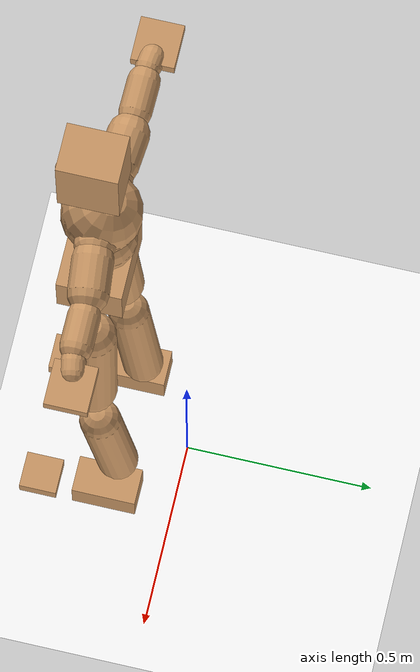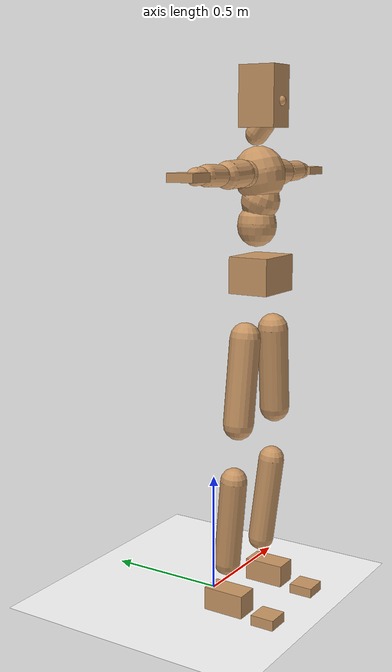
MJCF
<mujoco model="humanoid">
  <option integrator="implicitfast" />

  <visual>
    <global offwidth="1280" offheight="960" />
    <headlight active="1" ambient="0.34 0.34 0.34" diffuse="0.5 0.5 0.5" />
  </visual>

  <default>
    <joint damping="2" stiffness="2" armature="0.01" limited="true" solimplimit="0 .99 .01" />
    <geom condim="1" friction="0.7 0.005 0.0001" solimp=".99 .99 .003" solref="0.015 1" margin="0.001" rgba="0.8 0.6 .4 1" />
    <default class="smplcontact">
      <geom condim="3" friction="1. 0.005 0.0001" solref="0.015 1" solimp="0.98 0.98 0.001" priority="1" />
    </default>
    <default class="stiff_medium">
      <joint stiffness="10" />
    </default>
    <default class="stiff_medium_higher">
      <joint stiffness="50" />
    </default>
    <default class="stiff_high">
      <joint stiffness="100" />
    </default>
  </default>

  <asset>
    <texture type="skybox" builtin="gradient" rgb1="0.99 0.99 0.99" rgb2="0.608 0.828 0.892" width="100" />
    <texture builtin="flat" height="1278" mark="cross" markrgb="1 1 1" name="texgeom" random="0.01" rgb1="0.8 0.6 0.4" rgb2="0.8 0.6 0.4" type="cube" width="127" />
    <texture name="texplane" type="2d" builtin="checker" markrgb="1 1 1" rgb1="0.756 0.772 0.76" rgb2="0.6 0.6 0.6" width="100" height="100" />
    <material name="MatPlane" reflectance="0.5" texture="texplane" texrepeat="1 1" texuniform="true" />
    <material name="geom" texture="texgeom" texuniform="true" />
  </asset>

  <worldbody>
    <light name="tracking_light" pos="0 0 7" dir="0 0 -1" directional="true" cutoff="100" exponent="1" diffuse="1 1 1" specular="0.1 0.1 0.1" mode="trackcom" />
    <camera name="back" pos="0 3 2.4" xyaxes="-1 0 0 0 -1 2" mode="trackcom" />
    <camera name="side" pos="-3 0 2.4" xyaxes="0 -1 0 1 0 2" mode="trackcom" />
    <camera name="front_side" pos="-2.8 -2.8 0.8" xyaxes="0.5 -0.5 0 0.1 0.1 1" mode="trackcom" />
    <geom condim="3" name="floor" pos="0 0 0" rgba="1 1 1 1" size="100 100 .2" type="plane" material="MatPlane" />
    <body name="Pelvis" pos="-0.0018 -0.2233 1.39425" euler="90 0 0">
      <site name="Pelvis" size="0.01" />
      <freejoint name="Pelvis" />
      <geom type="box" pos="-0.0000 -0.0121 -0.0055" size="0.1069 0.0722 0.083" quat="1.0000 0.0000 0.0000 0.0000" density="3165.830099" name="Pelvis" />
      <body name="L_Hip" pos="0.10425 -0.1371 -0.0102">
        <joint name="L_Hip_x" type="hinge" pos="0 0 0" axis="1 0 0" stiffness="20.015620714285713" range="-160.0 22.92" class="stiff_medium" damping="35.83287359117287" armature="0.02851095036953482"/>
        <joint name="L_Hip_y" type="hinge" pos="0 0 0" axis="0 1 0" stiffness="19.866269693877552" range="-70.0 70.0" class="stiff_medium" damping="19.516878138369268" armature="0.019173631393182275"/>
        <joint name="L_Hip_z" type="hinge" pos="0 0 0" axis="0 0 1" stiffness="19.87905693877551" range="-28.65 90.0" class="stiff_medium" damping="23.812563344986486" armature="0.028524400066129187"/>
        <geom type="capsule" density="2040.816327" fromto="0.01035 -0.1125 -0.00135 0.0411 -0.4503 -0.0054" size="0.0615" name="L_Hip" />
        <body name="L_Knee" pos="0.05145 -0.5628 -0.00675">
          <joint name="L_Knee_x" type="hinge" pos="0 0 0" axis="1 0 0" range="-5.16 171.89" damping="17.99088108060037" armature="0.026396428561925714" stiffness="3.8318607346938776"/>
          <joint name="L_Knee_y" type="hinge" pos="0 0 0" axis="0 1 0" range="-4.58 6.88" damping="14.933138115539816" armature="0.017722990590982576" stiffness="3.932015113945578"/>
          <joint name="L_Knee_z" type="hinge" pos="0 0 0" axis="0 0 1" range="-6.88 4.58" damping="17.90521996986916" armature="0.026455159530536437" stiffness="3.7870318571428574"/>
          <geom type="capsule" density="1234.567901" fromto="-0.00405 -0.1194 -0.01305 -0.01635 -0.4776 -0.0525" size="0.0541" name="L_Knee" />
          <body name="L_Ankle" pos="-0.0204 -0.597 -0.06555">
            <joint name="L_Ankle_x" type="hinge" pos="0 0 0" axis="1 0 0" range="-45.84 45.84" class="stiff_medium" damping="9.919510798854684" armature="0.018221610090480504" stiffness="15.0"/>
            <joint name="L_Ankle_y" type="hinge" pos="0 0 0" axis="0 1 0" range="-74.48 22.92" class="stiff_medium" damping="4.917952818000754" armature="0.017915748088949298" stiffness="15.0"/>
            <joint name="L_Ankle_z" type="hinge" pos="0 0 0" axis="0 0 1" range="-4.58 4.58" class="stiff_medium" damping="9.269968981324833" armature="0.015913393502726768" stiffness="15.0"/>
            <geom type="box" pos="0.03495 -0.03585 0.0363" size="0.0483 0.0464 0.085" quat="1.0000 0.0000 0.0000 0.0000" density="449.071558" name="L_Ankle" class="smplcontact" />
            <body name="L_Toe" pos="0.0396 -0.0837 0.17895">
              <joint name="L_Toe_x" type="hinge" pos="0 0 0" axis="1 0 0" range="-91.67 22.92" armature="0.014752348892847818" damping="2.9751318182071684" stiffness="3.0"/>
              <joint name="L_Toe_y" type="hinge" pos="0 0 0" axis="0 1 0" range="-4.58 4.58" armature="0.01334841345486218" damping="2.8300261611718907" stiffness="3.0"/>
              <joint name="L_Toe_z" type="hinge" pos="0 0 0" axis="0 0 1" range="-4.58 4.58" armature="0.010509731565733258" damping="2.5111429547996575" stiffness="3.0"/>
              <geom type="box" pos="-0.0045 0.00825 0.0372" size="0.0478 0.02 0.0496" quat="1.0000 0.0000 0.0000 0.0000" density="423.206892" name="L_Toe" class="smplcontact" />
            </body>
          </body>
        </body>
      </body>
      <body name="R_Hip" pos="-0.10155 -0.13575 -0.00645">
        <joint name="R_Hip_x" type="hinge" pos="0 0 0" axis="1 0 0" stiffness="20.015620714285713" range="-160.0 22.92" class="stiff_medium" damping="35.83287359117287" armature="0.02851095036953482"/>
        <joint name="R_Hip_y" type="hinge" pos="0 0 0" axis="0 1 0" stiffness="19.866269693877552" range="-70.0 70.0" class="stiff_medium" damping="19.516878138369268" armature="0.019173631393182275"/>
        <joint name="R_Hip_z" type="hinge" pos="0 0 0" axis="0 0 1" stiffness="19.87905693877551" range="-90.0 28.65" class="stiff_medium" damping="23.812563344986486" armature="0.028524400066129187"/>
        <geom type="capsule" density="2040.816327" fromto="-0.01155 -0.11475 -0.0027 -0.0459 -0.45915 -0.01065" size="0.0606" name="R_Hip" />
        <body name="R_Knee" pos="-0.05745 -0.5739 -0.01335">
          <joint name="R_Knee_x" type="hinge" pos="0 0 0" axis="1 0 0" range="-5.16 171.89" damping="17.99088108060037" armature="0.026396428561925714" stiffness="3.8318607346938776"/>
          <joint name="R_Knee_y" type="hinge" pos="0 0 0" axis="0 1 0" range="-6.88 4.58" damping="14.933138115539816" armature="0.017722990590982576" stiffness="3.932015113945578"/>
          <joint name="R_Knee_z" type="hinge" pos="0 0 0" axis="0 0 1" range="-4.58 6.88" damping="17.90521996986916" armature="0.026455159530536437" stiffness="3.7870318571428574"/>
          <geom type="capsule" density="1234.567901" fromto="0.0048 -0.11955 -0.01275 0.0189 -0.47805 -0.0507" size="0.0541" name="R_Knee" />
          <body name="R_Ankle" pos="0.0237 -0.5976 -0.06345">
            <joint name="R_Ankle_x" type="hinge" pos="0 0 0" axis="1 0 0" range="-45.84 45.84" class="stiff_medium" damping="9.919510798854684" armature="0.018221610090480504" stiffness="15.0"/>
            <joint name="R_Ankle_y" type="hinge" pos="0 0 0" axis="0 1 0" range="-22.92 74.48" class="stiff_medium" damping="4.917952818000754" armature="0.017915748088949298" stiffness="15.0"/>
            <joint name="R_Ankle_z" type="hinge" pos="0 0 0" axis="0 0 1" range="-4.58 4.58" class="stiff_medium" damping="9.269968981324833" armature="0.015913393502726768" stiffness="15.0"/>
            <geom type="box" pos="-0.0318 -0.0261 0.0384" size="0.0483 0.0478 0.0865" quat="1.0000 0.0000 0.0000 0.0000" density="434.700981" name="R_Ankle" class="smplcontact" />
            <body name="R_Toe" pos="-0.0381 -0.07215 0.18495">
              <joint name="R_Toe_x" type="hinge" pos="0 0 0" axis="1 0 0" range="-91.67 22.92" armature="0.014752348892847818" damping="2.9751318182071684" stiffness="3.0"/>
              <joint name="R_Toe_y" type="hinge" pos="0 0 0" axis="0 1 0" range="-4.58 4.58" armature="0.01334841345486218" damping="2.8300261611718907" stiffness="3.0"/>
              <joint name="R_Toe_z" type="hinge" pos="0 0 0" axis="0 0 1" range="-4.58 4.58" armature="0.010509731565733258" damping="2.5111429547996575" stiffness="3.0"/>
              <geom type="box" pos="0.0063 0.00675 0.03405" size="0.0479 0.0216 0.0493" quat="1.0000 0.0000 0.0000 0.0000" density="407.384095" name="R_Toe" class="smplcontact" />
            </body>
          </body>
        </body>
      </body>
      <body name="Torso" pos="-0.0025 0.109 -0.0267">
        <joint name="Torso_x" type="hinge" pos="0 0 0" axis="1 0 0" range="-25.78 57.3" class="stiff_medium" damping="12.83312864312064" armature="0.008389867755726702" stiffness="8.724237142857143"/>
        <joint name="Torso_y" type="hinge" pos="0 0 0" axis="0 1 0" range="-57.3 57.3" class="stiff_high" damping="9.641007877053582" armature="0.0026152511802961754" stiffness="88.85287346938776"/>
        <joint name="Torso_z" type="hinge" pos="0 0 0" axis="0 0 1" range="-34.38 34.38" class="stiff_high" damping="15.25662184807281" armature="0.006404603814601959" stiffness="90.85827826086955"/>
        <geom type="capsule" density="2040.816327" fromto="0.0025 0.0608 0.0005 0.003 0.0743 0.0006" size="0.0769" name="Torso" />
        <body name="Spine" pos="0.0055 0.1352 0.0011">
          <joint name="Spine_x" type="hinge" pos="0 0 0" axis="1 0 0" stiffness="8.524132708333333" range="-25.78 57.3" class="stiff_medium" damping="12.593328186154565" armature="0.008268911088118508"/>
          <joint name="Spine_y" type="hinge" pos="0 0 0" axis="0 1 0" stiffness="8.372724772727274" range="-57.3 57.3" class="stiff_high" damping="3.7058359647278705" armature="0.002562864197858745"/>
          <joint name="Spine_z" type="hinge" pos="0 0 0" axis="0 0 1" stiffness="17.091765581395343" range="-34.38 34.38" class="stiff_high" damping="7.9123307827240765" armature="0.0050873245655035"/>
          <geom type="capsule" density="2040.816327" fromto="0.0007 0.0238 0.0114 0.0008 0.0291 0.014" size="0.0755" name="Spine" />
          <body name="Chest" pos="0.0015 0.0529 0.0254">
            <joint name="Chest_x" type="hinge" pos="0 0 0" axis="1 0 0" stiffness="8.200278372093024" range="-25.78 57.3" class="stiff_medium" damping="12.319816615498851" armature="0.008226164178146719"/>
            <joint name="Chest_y" type="hinge" pos="0 0 0" axis="0 1 0" stiffness="6.66116392857143" range="-57.3 57.3" class="stiff_high" damping="3.2862373670032503" armature="0.0025331899922285133"/>
            <joint name="Chest_z" type="hinge" pos="0 0 0" axis="0 0 1" stiffness="16.64932651162791" range="-34.38 34.38" class="stiff_high" damping="7.360514262532785" armature="0.004519466278837095"/>
            <geom type="capsule" density="2040.816327" fromto="-0.0009 0.0682 -0.0173 -0.001 0.0833 -0.0212" size="0.1002" name="Chest" />
            <body name="Neck" pos="-0.0028 0.2139 -0.0429">
              <joint name="Neck_x" type="hinge" pos="0 0 0" axis="1 0 0" range="-28.65 57.3" class="stiff_medium_higher" damping="10.000000000000004" armature="0.010000000000000009" stiffness="50.0"/>
              <joint name="Neck_y" type="hinge" pos="0 0 0" axis="0 1 0" range="-40.11 40.11" class="stiff_medium_higher" damping="10.0" armature="0.01" stiffness="50.0"/>
              <joint name="Neck_z" type="hinge" pos="0 0 0" axis="0 0 1" range="-40.11 40.11" class="stiff_medium_higher" damping="9.999999999999979" armature="0.009999999999999959" stiffness="50.0"/>
              <geom type="capsule" density="1000" fromto="0.001 0.013 0.0103 0.0041 0.052 0.0411" size="0.0436" name="Neck" />
              <body name="Head" pos="0.0052 0.065 0.0513">
                <joint name="Head_x" type="hinge" pos="0 0 0" axis="1 0 0" range="-28.65 57.3" class="stiff_medium_higher" damping="1.9999999999999982" armature="0.009999999999999983" stiffness="50.0"/>
                <joint name="Head_y" type="hinge" pos="0 0 0" axis="0 1 0" range="-40.11 40.11" class="stiff_medium_higher" damping="2.0" armature="0.01" stiffness="50.0"/>
                <joint name="Head_z" type="hinge" pos="0 0 0" axis="0 0 1" range="-40.11 40.11" class="stiff_medium_higher" damping="1.999999999999996" armature="0.009999999999999962" stiffness="50.0"/>
                <geom type="box" pos="-0.0042 0.0876 -0.0116" size="0.0606 0.1154 0.076" quat="1.0000 0.0000 0.0000 0.0000" density="1018.069894" name="Head" />
                <geom type="capsule" name="nose" size="0.02 0.01" pos="0 0.07 0.05" quat="1 0 0 0" mass="0" contype="0" conaffinity="0" />
              </body>
            </body>
            <body name="L_Thorax" pos="0.04334 0.066935 -0.018755">
              <joint name="L_Thorax_x" type="hinge" pos="0 0 0" axis="1 0 0" range="-10.89 4.58" class="stiff_medium_higher" damping="8.434703621562758" armature="0.004456108006307089" stiffness="19.956940306122444"/>
              <joint name="L_Thorax_y" type="hinge" pos="0 0 0" axis="0 1 0" range="-28.65 17.19" class="stiff_medium_higher" damping="6.022763730189365" armature="0.002308462047497596" stiffness="19.641693367346935"/>
              <joint name="L_Thorax_z" type="hinge" pos="0 0 0" axis="0 0 1" range="-31.51 40.11" class="stiff_medium_higher" damping="6.020659652326863" armature="0.0023064402545495072" stiffness="19.64517755102041"/>
              <geom type="capsule" density="1000" fromto="0.01001 0.003355 -0.00099 0.04004 0.01342 -0.003905" size="0.0521" name="L_Thorax" />
              <body name="L_Shoulder" pos="0.05005 0.016775 -0.004895">
                <joint name="L_Shoulder_x" type="hinge" pos="0 0 0" axis="1 0 0" range="-97.4 97.4" class="stiff_medium" damping="2.750732619270307" armature="0.005207580254125437" stiffness="4.036066215805471"/>
                <joint name="L_Shoulder_y" type="hinge" pos="0 0 0" axis="0 1 0" range="-108.86 80.21" class="stiff_medium" damping="1.8298767221096353" armature="0.0023536822566645405" stiffness="3.9517852040816326"/>
                <joint name="L_Shoulder_z" type="hinge" pos="0 0 0" axis="0 0 1" range="-97.4 85.94" class="stiff_medium" damping="1.8299095357342448" armature="0.002350748922258386" stiffness="3.9568582653061224"/>
                <geom type="capsule" density="1000" fromto="0.028545 -0.00143 -0.003025 0.114235 -0.00561 -0.0121" size="0.0517" name="L_Shoulder" />
                <body name="L_Elbow" pos="0.14278 -0.00704 -0.015125">
                  <joint name="L_Elbow_x" type="hinge" pos="0 0 0" axis="1 0 0" range="-17.19 4.58" damping="2.6383809861160996" armature="0.0066028902176262895" stiffness="0.8433948163265306"/>
                  <joint name="L_Elbow_y" type="hinge" pos="0 0 0" axis="0 1 0" range="-180.0 17.19" damping="1.649331180076203" armature="0.0025828362461048165" stiffness="0.842575551020408"/>
                  <joint name="L_Elbow_z" type="hinge" pos="0 0 0" axis="0 0 1" range="-100.84 4.58" damping="1.6457692537144069" armature="0.0025674453810836995" stiffness="0.8439693265306122"/>
                  <geom type="capsule" density="1000" fromto="0.02739 0.00099 -0.00011 0.10967 0.00396 -0.000495" size="0.0405" name="L_Elbow" />
                  <body name="L_Wrist" pos="0.13706 0.00495 -0.00066">
                    <joint name="L_Wrist_x" type="hinge" pos="0 0 0" axis="1 0 0" range="-180.0 22.92" armature="0.007461834395238961" damping="1.2279494204587553" stiffness="1.0103814285714288"/>
                    <joint name="L_Wrist_y" type="hinge" pos="0 0 0" axis="0 1 0" range="-17.19 17.19" armature="0.003664915616612755" damping="0.8549575346764109" stiffness="0.9972294897959184"/>
                    <joint name="L_Wrist_z" type="hinge" pos="0 0 0" axis="0 0 1" range="-22.92 22.92" armature="0.003441422269276133" damping="0.8306797080467407" stiffness="1.002534306122449"/>
                    <geom type="capsule" density="1000" fromto="0.00924 -0.00088 -0.00165 0.03696 -0.003575 -0.0066" size="0.0318" name="L_Wrist" class="smplcontact" />
                    <body name="L_Hand" pos="0.0462 -0.00451 -0.008195">
                      <joint name="L_Hand_x" type="hinge" pos="0 0 0" axis="1 0 0" range="-17.19 17.19" armature="0.009696126030368629" damping="1.4605299472044722" stiffness="1.0999999999999999"/>
                      <joint name="L_Hand_y" type="hinge" pos="0 0 0" axis="0 1 0" range="-51.57 51.57" armature="0.006325063576496692" damping="1.1796245109479846" stiffness="1.0999999999999999"/>
                      <joint name="L_Hand_z" type="hinge" pos="0 0 0" axis="0 0 1" range="-91.67 91.67" armature="0.0054264608203164364" damping="1.0926213344382472" stiffness="1.0999999999999999"/>
                      <geom type="box" pos="0.027115 0.00055 -0.00319" size="0.0585 0.0158 0.0538" quat="1.0000 0.0000 0.0000 0.0000" density="400.552564" name="L_Hand" class="smplcontact" />
                    </body>
                  </body>
                </body>
              </body>
            </body>
            <body name="R_Thorax" pos="-0.04499 0.06534 -0.02123">
              <joint name="R_Thorax_x" type="hinge" pos="0 0 0" axis="1 0 0" range="-10.89 4.58" class="stiff_medium_higher" damping="8.434703621562758" armature="0.004456108006307089" stiffness="19.956940306122444"/>
              <joint name="R_Thorax_y" type="hinge" pos="0 0 0" axis="0 1 0" range="-17.19 28.65" class="stiff_medium_higher" damping="6.022763730189365" armature="0.002308462047497596" stiffness="19.641693367346935"/>
              <joint name="R_Thorax_z" type="hinge" pos="0 0 0" axis="0 0 1" range="-40.11 31.51" class="stiff_medium_higher" damping="6.020659652326863" armature="0.0023064402545495072" stiffness="19.64517755102041"/>
              <geom type="capsule" density="1000" fromto="-0.01056 0.003575 -0.00099 -0.04224 0.0143 -0.004015" size="0.0511" name="R_Thorax" />
              <body name="R_Shoulder" pos="-0.0528 0.01793 -0.005005">
                <joint name="R_Shoulder_x" type="hinge" pos="0 0 0" axis="1 0 0" range="-97.4 97.4" class="stiff_medium" damping="2.750732619270307" armature="0.005207580254125437" stiffness="4.036066215805471"/>
                <joint name="R_Shoulder_y" type="hinge" pos="0 0 0" axis="0 1 0" range="-80.21 108.86" class="stiff_medium" damping="1.8298767221096353" armature="0.0023536822566645405" stiffness="3.9517852040816326"/>
                <joint name="R_Shoulder_z" type="hinge" pos="0 0 0" axis="0 0 1" range="-85.94 97.4" class="stiff_medium" damping="1.8299095357342448" armature="0.002350748922258386" stiffness="3.9568582653061224"/>
                <geom type="capsule" density="1000" fromto="-0.027885 -0.001485 -0.002365 -0.11165 -0.005885 -0.009405" size="0.0531" name="R_Shoulder" />
                <body name="R_Elbow" pos="-0.139535 -0.007315 -0.01177">
                  <joint name="R_Elbow_x" type="hinge" pos="0 0 0" axis="1 0 0" range="-17.19 4.58" damping="2.6383809861160996" armature="0.0066028902176262895" stiffness="0.8433948163265306"/>
                  <joint name="R_Elbow_y" type="hinge" pos="0 0 0" axis="0 1 0" range="-17.19 180.0" damping="1.649331180076203" armature="0.0025828362461048165" stiffness="0.842575551020408"/>
                  <joint name="R_Elbow_z" type="hinge" pos="0 0 0" axis="0 0 1" range="-4.58 100.84" damping="1.6457692537144069" armature="0.0025674453810836995" stiffness="0.8439693265306122"/>
                  <geom type="capsule" density="1000" fromto="-0.028105 0.00088 -0.000605 -0.11231 0.00341 -0.00242" size="0.0408" name="R_Elbow" />
                  <body name="R_Wrist" pos="-0.140415 0.00429 -0.00308">
                    <joint name="R_Wrist_x" type="hinge" pos="0 0 0" axis="1 0 0" range="-180.0 22.92" armature="0.007461834395238961" damping="1.2279494204587553" stiffness="1.0103814285714288"/>
                    <joint name="R_Wrist_y" type="hinge" pos="0 0 0" axis="0 1 0" range="-17.19 17.19" armature="0.003664915616612755" damping="0.8549575346764109" stiffness="0.9972294897959184"/>
                    <joint name="R_Wrist_z" type="hinge" pos="0 0 0" axis="0 0 1" range="-22.92 22.92" armature="0.003441422269276133" damping="0.8306797080467407" stiffness="1.002534306122449"/>
                    <geom type="capsule" density="1000" fromto="-0.009295 -0.00066 -0.001155 -0.037235 -0.002695 -0.004565" size="0.0326" name="R_Wrist" class="smplcontact" />
                    <body name="R_Hand" pos="-0.04653 -0.003355 -0.005665">
                      <joint name="R_Hand_x" type="hinge" pos="0 0 0" axis="1 0 0" range="-17.19 17.19" armature="0.009696126030368629" damping="1.4605299472044722" stiffness="1.0999999999999999"/>
                      <joint name="R_Hand_y" type="hinge" pos="0 0 0" axis="0 1 0" range="-51.57 51.57" armature="0.006325063576496692" damping="1.1796245109479846" stiffness="1.0999999999999999"/>
                      <joint name="R_Hand_z" type="hinge" pos="0 0 0" axis="0 0 1" range="-91.67 91.67" armature="0.0054264608203164364" damping="1.0926213344382472" stiffness="1.0999999999999999"/>
                      <geom type="box" pos="-0.02541 -0.000495 -0.004345" size="0.0569 0.0164 0.0546" quat="1.0000 0.0000 0.0000 0.0000" density="403.679611" name="R_Hand" class="smplcontact" />
                    </body>
                  </body>
                </body>
              </body>
            </body>
          </body>
        </body>
      </body>
    </body>
  </worldbody>
  <actuator>
    <general name="L_Hip_x" joint="L_Hip_x" biastype="affine" gainprm="575.1089582783409" biasprm="-430.985873610294 -360.28117285714285 -4.7777164788230495" ctrllimited="true" ctrlrange="-1 1" forcerange="-720.5623457142857 720.5623457142857" />
    <general name="L_Hip_y" joint="L_Hip_y" biastype="affine" gainprm="436.88208847163486" biasprm="0.0 -357.5928544897959 -3.903375627673854" ctrllimited="true" ctrlrange="-1 1" forcerange="-715.1857089795918 715.1857089795918" />
    <general name="L_Hip_z" joint="L_Hip_z" biastype="affine" gainprm="370.49589223625946" biasprm="191.57120091609366 -357.82302489795916 -4.762512668997298" ctrllimited="true" ctrlrange="-1 1" forcerange="-715.6460497959183 715.6460497959183" />
    <general name="L_Knee_x" joint="L_Knee_x" biastype="affine" gainprm="532.8384166851074" biasprm="501.7800012081782 -344.867466122449 -4.497720270150093" ctrllimited="true" ctrlrange="-1 1" forcerange="-689.734932244898 689.734932244898" />
    <general name="L_Knee_y" joint="L_Knee_y" biastype="affine" gainprm="35.39074276489669" biasprm="7.10285413257089 -353.88136025510204 -3.733284528884954" ctrllimited="true" ctrlrange="-1 1" forcerange="-707.7627205102041 707.7627205102041" />
    <general name="L_Knee_z" joint="L_Knee_z" biastype="affine" gainprm="34.085797336654615" biasprm="-6.840954090253544 -340.83286714285714 -4.47630499246729" ctrllimited="true" ctrlrange="-1 1" forcerange="-681.6657342857143 681.6657342857143" />
    <general name="L_Ankle_x" joint="L_Ankle_x" biastype="affine" gainprm="108.0079554304171" biasprm="0.0 -135.0 -3.306503599618228" ctrllimited="true" ctrlrange="-1 1" forcerange="-270.0 270.0" />
    <general name="L_Ankle_y" joint="L_Ankle_y" biastype="affine" gainprm="114.74667167236721" biasprm="-60.742693957158664 -135.0 -3.2786352120005025" ctrllimited="true" ctrlrange="-1 1" forcerange="-270.0 270.0" />
    <general name="L_Ankle_z" joint="L_Ankle_z" biastype="affine" gainprm="10.791370765080938" biasprm="0.0 -135.0 -3.089989660441611" ctrllimited="true" ctrlrange="-1 1" forcerange="-270.0 270.0" />
    <general name="L_Toe_x" joint="L_Toe_x" biastype="affine" gainprm="107.99853065245631" biasprm="-64.79534848028948 -108.0 -1.1900527272828674" ctrllimited="true" ctrlrange="-1 1" forcerange="-216.0 216.0" />
    <general name="L_Toe_y" joint="L_Toe_y" biastype="affine" gainprm="8.633096612064751" biasprm="0.0 -108.0 -1.1320104644687563" ctrllimited="true" ctrlrange="-1 1" forcerange="-216.0 216.0" />
    <general name="L_Toe_z" joint="L_Toe_z" biastype="affine" gainprm="8.633096612064751" biasprm="0.0 -108.0 -1.004457181919863" ctrllimited="true" ctrlrange="-1 1" forcerange="-216.0 216.0" />
    <general name="R_Hip_x" joint="R_Hip_x" biastype="affine" gainprm="575.1089582783409" biasprm="-430.985873610294 -360.28117285714285 -4.7777164788230495" ctrllimited="true" ctrlrange="-1 1" forcerange="-720.5623457142857 720.5623457142857" />
    <general name="R_Hip_y" joint="R_Hip_y" biastype="affine" gainprm="436.88208847163486" biasprm="0.0 -357.5928544897959 -3.903375627673854" ctrllimited="true" ctrlrange="-1 1" forcerange="-715.1857089795918 715.1857089795918" />
    <general name="R_Hip_z" joint="R_Hip_z" biastype="affine" gainprm="370.49589223625946" biasprm="-191.57120091609366 -357.82302489795916 -4.762512668997298" ctrllimited="true" ctrlrange="-1 1" forcerange="-715.6460497959183 715.6460497959183" />
    <general name="R_Knee_x" joint="R_Knee_x" biastype="affine" gainprm="532.8384166851074" biasprm="501.7800012081782 -344.867466122449 -4.497720270150093" ctrllimited="true" ctrlrange="-1 1" forcerange="-689.734932244898 689.734932244898" />
    <general name="R_Knee_y" joint="R_Knee_y" biastype="affine" gainprm="35.39074276489669" biasprm="-7.10285413257089 -353.88136025510204 -3.733284528884954" ctrllimited="true" ctrlrange="-1 1" forcerange="-707.7627205102041 707.7627205102041" />
    <general name="R_Knee_z" joint="R_Knee_z" biastype="affine" gainprm="34.085797336654615" biasprm="6.840954090253544 -340.83286714285714 -4.47630499246729" ctrllimited="true" ctrlrange="-1 1" forcerange="-681.6657342857143 681.6657342857143" />
    <general name="R_Ankle_x" joint="R_Ankle_x" biastype="affine" gainprm="108.0079554304171" biasprm="0.0 -135.0 -3.306503599618228" ctrllimited="true" ctrlrange="-1 1" forcerange="-270.0 270.0" />
    <general name="R_Ankle_y" joint="R_Ankle_y" biastype="affine" gainprm="114.74667167236721" biasprm="60.742693957158664 -135.0 -3.2786352120005025" ctrllimited="true" ctrlrange="-1 1" forcerange="-270.0 270.0" />
    <general name="R_Ankle_z" joint="R_Ankle_z" biastype="affine" gainprm="10.791370765080938" biasprm="0.0 -135.0 -3.089989660441611" ctrllimited="true" ctrlrange="-1 1" forcerange="-270.0 270.0" />
    <general name="R_Toe_x" joint="R_Toe_x" biastype="affine" gainprm="107.99853065245631" biasprm="-64.79534848028948 -108.0 -1.1900527272828674" ctrllimited="true" ctrlrange="-1 1" forcerange="-216.0 216.0" />
    <general name="R_Toe_y" joint="R_Toe_y" biastype="affine" gainprm="8.633096612064751" biasprm="0.0 -108.0 -1.1320104644687563" ctrllimited="true" ctrlrange="-1 1" forcerange="-216.0 216.0" />
    <general name="R_Toe_z" joint="R_Toe_z" biastype="affine" gainprm="8.633096612064751" biasprm="0.0 -108.0 -1.004457181919863" ctrllimited="true" ctrlrange="-1 1" forcerange="-216.0 216.0" />
    <general name="Torso_x" joint="Torso_x" biastype="affine" gainprm="151.80377221252243" biasprm="57.593342563056154 -209.38169142857143 -3.422167638165504" ctrllimited="true" ctrlrange="-1 1" forcerange="-314.07253714285713 314.07253714285713" />
    <general name="Torso_y" joint="Torso_y" biastype="affine" gainprm="213.26260438991383" biasprm="0.0 -213.24689632653062 -1.9282015754107165" ctrllimited="true" ctrlrange="-1 1" forcerange="-319.8703444897959 319.8703444897959" />
    <general name="Torso_z" joint="Torso_z" biastype="affine" gainprm="130.84555825179245" biasprm="0.0 -218.05986782608693 -3.0513243696145618" ctrllimited="true" ctrlrange="-1 1" forcerange="-327.0898017391304 327.0898017391304" />
    <general name="Spine_x" joint="Spine_x" biastype="affine" gainprm="148.32190812518058" biasprm="56.272346462514335 -204.579185 -3.3582208496412176" ctrllimited="true" ctrlrange="-1 1" forcerange="-306.86877749999996 306.86877749999996" />
    <general name="Spine_y" joint="Spine_y" biastype="affine" gainprm="200.96019646308363" biasprm="0.0 -200.94539454545458 -1.8529179823639352" ctrllimited="true" ctrlrange="-1 1" forcerange="-301.41809181818184 301.41809181818184" />
    <general name="Spine_z" joint="Spine_z" biastype="affine" gainprm="123.06977700949903" biasprm="0.0 -205.10118697674412 -2.637443594241359" ctrllimited="true" ctrlrange="-1 1" forcerange="-307.6517804651162 307.6517804651162" />
    <general name="Chest_x" joint="Chest_x" biastype="affine" gainprm="142.68676672729774" biasprm="54.13441125715483 -196.80668093023257 -3.2852844307996936" ctrllimited="true" ctrlrange="-1 1" forcerange="-295.21002139534886 295.21002139534886" />
    <general name="Chest_y" joint="Chest_y" biastype="affine" gainprm="159.87971038041" biasprm="0.0 -159.8679342857143 -1.6431186835016252" ctrllimited="true" ctrlrange="-1 1" forcerange="-239.80190142857145 239.80190142857145" />
    <general name="Chest_z" joint="Chest_z" biastype="affine" gainprm="119.88398105429127" biasprm="0.0 -199.7919181395349 -2.453504754177595" ctrllimited="true" ctrlrange="-1 1" forcerange="-299.68787720930237 299.68787720930237" />
    <general name="Neck_x" joint="Neck_x" biastype="affine" gainprm="27.00198885760427" biasprm="9.000662952534757 -36.0 -0.8000000000000004" ctrllimited="true" ctrlrange="-1 1" forcerange="-72.0 72.0" />
    <general name="Neck_y" joint="Neck_y" biastype="affine" gainprm="25.20185626709732" biasprm="0.0 -36.0 -0.8" ctrllimited="true" ctrlrange="-1 1" forcerange="-72.0 72.0" />
    <general name="Neck_z" joint="Neck_z" biastype="affine" gainprm="25.20185626709732" biasprm="0.0 -36.0 -0.7999999999999984" ctrllimited="true" ctrlrange="-1 1" forcerange="-72.0 72.0" />
    <general name="Head_x" joint="Head_x" biastype="affine" gainprm="18.001325905069514" biasprm="6.000441968356505 -24.0 -0.7999999999999994" ctrllimited="true" ctrlrange="-1 1" forcerange="-48.0 48.0" />
    <general name="Head_y" joint="Head_y" biastype="affine" gainprm="16.801237511398213" biasprm="0.0 -24.0 -0.8" ctrllimited="true" ctrlrange="-1 1" forcerange="-48.0 48.0" />
    <general name="Head_z" joint="Head_z" biastype="affine" gainprm="16.801237511398213" biasprm="0.0 -24.0 -0.7999999999999985" ctrllimited="true" ctrlrange="-1 1" forcerange="-48.0 48.0" />
    <general name="L_Thorax_x" joint="L_Thorax_x" biastype="affine" gainprm="6.466106980153143" biasprm="-2.6374360080650514 -47.89665673469387 -0.6747762897250207" ctrllimited="true" ctrlrange="-1 1" forcerange="-95.79331346938774 95.79331346938774" />
    <general name="L_Thorax_y" joint="L_Thorax_y" biastype="affine" gainprm="18.857414593762904" biasprm="-4.714353648440726 -47.140064081632644 -0.48182109841514925" ctrllimited="true" ctrlrange="-1 1" forcerange="-94.28012816326529 94.28012816326529" />
    <general name="L_Thorax_z" joint="L_Thorax_z" biastype="affine" gainprm="29.46787972505706" biasprm="3.538449673771163 -47.14842612244898 -0.48165277218614905" ctrllimited="true" ctrlrange="-1 1" forcerange="-94.29685224489796 94.29685224489796" />
    <general name="L_Shoulder_x" joint="L_Shoulder_x" biastype="affine" gainprm="32.93334506047744" biasprm="0.0 -19.373117835866264 -0.733528698472082" ctrllimited="true" ctrlrange="-1 1" forcerange="-38.74623567173253 38.74623567173253" />
    <general name="L_Shoulder_y" joint="L_Shoulder_y" biastype="affine" gainprm="31.297133640991394" biasprm="-4.74249155770034 -18.968568979591836 -0.4879671258959028" ctrllimited="true" ctrlrange="-1 1" forcerange="-37.93713795918367 37.93713795918367" />
    <general name="L_Shoulder_z" joint="L_Shoulder_z" biastype="affine" gainprm="30.387595059587213" biasprm="-1.8994318718384982 -18.992919673469387 -0.48797587619579863" ctrllimited="true" ctrlrange="-1 1" forcerange="-37.985839346938775 37.985839346938775" />
    <general name="L_Elbow_x" joint="L_Elbow_x" biastype="affine" gainprm="5.768185641845626" biasprm="-3.3411493313584466 -30.3622133877551 -0.42214095777857596" ctrllimited="true" ctrlrange="-1 1" forcerange="-60.7244267755102 60.7244267755102" />
    <general name="L_Elbow_y" joint="L_Elbow_y" biastype="affine" gainprm="52.19676802931011" biasprm="-43.09628177317298 -30.33271983673469 -0.2638929888121925" ctrllimited="true" ctrlrange="-1 1" forcerange="-60.66543967346938 60.66543967346938" />
    <general name="L_Elbow_z" joint="L_Elbow_z" biastype="affine" gainprm="27.951141407994328" biasprm="-25.522451830141666 -30.382895755102037 -0.26332308059430515" ctrllimited="true" ctrlrange="-1 1" forcerange="-60.765791510204075 60.765791510204075" />
    <general name="L_Wrist_x" joint="L_Wrist_x" biastype="affine" gainprm="10.735167645580283" biasprm="-8.310073594361082 -6.062288571428573 -0.4911797681835022" ctrllimited="true" ctrlrange="-1 1" forcerange="-12.124577142857145 12.124577142857145" />
    <general name="L_Wrist_y" joint="L_Wrist_y" biastype="affine" gainprm="1.7951453047962525" biasprm="0.0 -5.9833769387755105 -0.3419830138705644" ctrllimited="true" ctrlrange="-1 1" forcerange="-11.966753877551021 11.966753877551021" />
    <general name="L_Wrist_z" joint="L_Wrist_z" biastype="affine" gainprm="2.4062595700697247" biasprm="0.0 -6.015205836734694 -0.33227188321869633" ctrllimited="true" ctrlrange="-1 1" forcerange="-12.030411673469388 12.030411673469388" />
    <general name="L_Hand_x" joint="L_Hand_x" biastype="affine" gainprm="1.9801458495576467" biasprm="0.0 -6.6 -0.5842119788817889" ctrllimited="true" ctrlrange="-1 1" forcerange="-13.2 13.2" />
    <general name="L_Hand_y" joint="L_Hand_y" biastype="affine" gainprm="5.940437548672939" biasprm="0.0 -6.6 -0.4718498043791939" ctrllimited="true" ctrlrange="-1 1" forcerange="-13.2 13.2" />
    <general name="L_Hand_z" joint="L_Hand_z" biastype="affine" gainprm="10.55962594700113" biasprm="0.0 -6.6 -0.4370485337752989" ctrllimited="true" ctrlrange="-1 1" forcerange="-13.2 13.2" />
    <general name="R_Thorax_x" joint="R_Thorax_x" biastype="affine" gainprm="6.466106980153143" biasprm="-2.6374360080650514 -47.89665673469387 -0.6747762897250207" ctrllimited="true" ctrlrange="-1 1" forcerange="-95.79331346938774 95.79331346938774" />
    <general name="R_Thorax_y" joint="R_Thorax_y" biastype="affine" gainprm="18.857414593762904" biasprm="4.714353648440723 -47.140064081632644 -0.48182109841514925" ctrllimited="true" ctrlrange="-1 1" forcerange="-94.28012816326529 94.28012816326529" />
    <general name="R_Thorax_z" joint="R_Thorax_z" biastype="affine" gainprm="29.46787972505706" biasprm="-3.538449673771163 -47.14842612244898 -0.48165277218614905" ctrllimited="true" ctrlrange="-1 1" forcerange="-94.29685224489796 94.29685224489796" />
    <general name="R_Shoulder_x" joint="R_Shoulder_x" biastype="affine" gainprm="32.93334506047744" biasprm="0.0 -19.373117835866264 -0.733528698472082" ctrllimited="true" ctrlrange="-1 1" forcerange="-38.74623567173253 38.74623567173253" />
    <general name="R_Shoulder_y" joint="R_Shoulder_y" biastype="affine" gainprm="31.297133640991394" biasprm="4.74249155770034 -18.968568979591836 -0.4879671258959028" ctrllimited="true" ctrlrange="-1 1" forcerange="-37.93713795918367 37.93713795918367" />
    <general name="R_Shoulder_z" joint="R_Shoulder_z" biastype="affine" gainprm="30.387595059587213" biasprm="1.899431871838494 -18.992919673469387 -0.48797587619579863" ctrllimited="true" ctrlrange="-1 1" forcerange="-37.985839346938775 37.985839346938775" />
    <general name="R_Elbow_x" joint="R_Elbow_x" biastype="affine" gainprm="5.768185641845626" biasprm="-3.3411493313584466 -30.3622133877551 -0.42214095777857596" ctrllimited="true" ctrlrange="-1 1" forcerange="-60.7244267755102 60.7244267755102" />
    <general name="R_Elbow_y" joint="R_Elbow_y" biastype="affine" gainprm="52.19676802931011" biasprm="43.09628177317298 -30.33271983673469 -0.2638929888121925" ctrllimited="true" ctrlrange="-1 1" forcerange="-60.66543967346938 60.66543967346938" />
    <general name="R_Elbow_z" joint="R_Elbow_z" biastype="affine" gainprm="27.951141407994328" biasprm="25.522451830141662 -30.382895755102037 -0.26332308059430515" ctrllimited="true" ctrlrange="-1 1" forcerange="-60.765791510204075 60.765791510204075" />
    <general name="R_Wrist_x" joint="R_Wrist_x" biastype="affine" gainprm="10.735167645580283" biasprm="-8.310073594361082 -6.062288571428573 -0.4911797681835022" ctrllimited="true" ctrlrange="-1 1" forcerange="-12.124577142857145 12.124577142857145" />
    <general name="R_Wrist_y" joint="R_Wrist_y" biastype="affine" gainprm="1.7951453047962525" biasprm="0.0 -5.9833769387755105 -0.3419830138705644" ctrllimited="true" ctrlrange="-1 1" forcerange="-11.966753877551021 11.966753877551021" />
    <general name="R_Wrist_z" joint="R_Wrist_z" biastype="affine" gainprm="2.4062595700697247" biasprm="0.0 -6.015205836734694 -0.33227188321869633" ctrllimited="true" ctrlrange="-1 1" forcerange="-12.030411673469388 12.030411673469388" />
    <general name="R_Hand_x" joint="R_Hand_x" biastype="affine" gainprm="1.9801458495576467" biasprm="0.0 -6.6 -0.5842119788817889" ctrllimited="true" ctrlrange="-1 1" forcerange="-13.2 13.2" />
    <general name="R_Hand_y" joint="R_Hand_y" biastype="affine" gainprm="5.940437548672939" biasprm="0.0 -6.6 -0.4718498043791939" ctrllimited="true" ctrlrange="-1 1" forcerange="-13.2 13.2" />
    <general name="R_Hand_z" joint="R_Hand_z" biastype="affine" gainprm="10.55962594700113" biasprm="0.0 -6.6 -0.4370485337752989" ctrllimited="true" ctrlrange="-1 1" forcerange="-13.2 13.2" />
  </actuator>
  <contact>
    <exclude body1="Torso" body2="Chest" />
    <exclude body1="Head" body2="Chest" />
    <exclude body1="R_Knee" body2="R_Toe" />
    <exclude body1="R_Knee" body2="L_Ankle" />
    <exclude body1="R_Knee" body2="L_Toe" />
    <exclude body1="L_Knee" body2="L_Toe" />
    <exclude body1="L_Knee" body2="R_Ankle" />
    <exclude body1="L_Knee" body2="R_Toe" />
    <exclude body1="L_Shoulder" body2="Chest" />
    <exclude body1="R_Shoulder" body2="Chest" />
  </contact>
  <sensor>
    <framelinvel name="sensor_Pelvis_framelinvel" objtype="xbody" objname="Pelvis" />
    <framelinvel name="sensor_L_Hip_framelinvel" objtype="xbody" objname="L_Hip" />
    <framelinvel name="sensor_L_Knee_framelinvel" objtype="xbody" objname="L_Knee" />
    <framelinvel name="sensor_L_Ankle_framelinvel" objtype="xbody" objname="L_Ankle" />
    <framelinvel name="sensor_L_Toe_framelinvel" objtype="xbody" objname="L_Toe" />
    <framelinvel name="sensor_R_Hip_framelinvel" objtype="xbody" objname="R_Hip" />
    <framelinvel name="sensor_R_Knee_framelinvel" objtype="xbody" objname="R_Knee" />
    <framelinvel name="sensor_R_Ankle_framelinvel" objtype="xbody" objname="R_Ankle" />
    <framelinvel name="sensor_R_Toe_framelinvel" objtype="xbody" objname="R_Toe" />
    <framelinvel name="sensor_Torso_framelinvel" objtype="xbody" objname="Torso" />
    <framelinvel name="sensor_Spine_framelinvel" objtype="xbody" objname="Spine" />
    <framelinvel name="sensor_Chest_framelinvel" objtype="xbody" objname="Chest" />
    <framelinvel name="sensor_Neck_framelinvel" objtype="xbody" objname="Neck" />
    <framelinvel name="sensor_Head_framelinvel" objtype="xbody" objname="Head" />
    <framelinvel name="sensor_L_Thorax_framelinvel" objtype="xbody" objname="L_Thorax" />
    <framelinvel name="sensor_L_Shoulder_framelinvel" objtype="xbody" objname="L_Shoulder" />
    <framelinvel name="sensor_L_Elbow_framelinvel" objtype="xbody" objname="L_Elbow" />
    <framelinvel name="sensor_L_Wrist_framelinvel" objtype="xbody" objname="L_Wrist" />
    <framelinvel name="sensor_L_Hand_framelinvel" objtype="xbody" objname="L_Hand" />
    <framelinvel name="sensor_R_Thorax_framelinvel" objtype="xbody" objname="R_Thorax" />
    <framelinvel name="sensor_R_Shoulder_framelinvel" objtype="xbody" objname="R_Shoulder" />
    <framelinvel name="sensor_R_Elbow_framelinvel" objtype="xbody" objname="R_Elbow" />
    <framelinvel name="sensor_R_Wrist_framelinvel" objtype="xbody" objname="R_Wrist" />
    <framelinvel name="sensor_R_Hand_framelinvel" objtype="xbody" objname="R_Hand" />
    <frameangvel name="sensor_Pelvis_frameangvel" objtype="xbody" objname="Pelvis" />
    <frameangvel name="sensor_L_Hip_frameangvel" objtype="xbody" objname="L_Hip" />
    <frameangvel name="sensor_L_Knee_frameangvel" objtype="xbody" objname="L_Knee" />
    <frameangvel name="sensor_L_Ankle_frameangvel" objtype="xbody" objname="L_Ankle" />
    <frameangvel name="sensor_L_Toe_frameangvel" objtype="xbody" objname="L_Toe" />
    <frameangvel name="sensor_R_Hip_frameangvel" objtype="xbody" objname="R_Hip" />
    <frameangvel name="sensor_R_Knee_frameangvel" objtype="xbody" objname="R_Knee" />
    <frameangvel name="sensor_R_Ankle_frameangvel" objtype="xbody" objname="R_Ankle" />
    <frameangvel name="sensor_R_Toe_frameangvel" objtype="xbody" objname="R_Toe" />
    <frameangvel name="sensor_Torso_frameangvel" objtype="xbody" objname="Torso" />
    <frameangvel name="sensor_Spine_frameangvel" objtype="xbody" objname="Spine" />
    <frameangvel name="sensor_Chest_frameangvel" objtype="xbody" objname="Chest" />
    <frameangvel name="sensor_Neck_frameangvel" objtype="xbody" objname="Neck" />
    <frameangvel name="sensor_Head_frameangvel" objtype="xbody" objname="Head" />
    <frameangvel name="sensor_L_Thorax_frameangvel" objtype="xbody" objname="L_Thorax" />
    <frameangvel name="sensor_L_Shoulder_frameangvel" objtype="xbody" objname="L_Shoulder" />
    <frameangvel name="sensor_L_Elbow_frameangvel" objtype="xbody" objname="L_Elbow" />
    <frameangvel name="sensor_L_Wrist_frameangvel" objtype="xbody" objname="L_Wrist" />
    <frameangvel name="sensor_L_Hand_frameangvel" objtype="xbody" objname="L_Hand" />
    <frameangvel name="sensor_R_Thorax_frameangvel" objtype="xbody" objname="R_Thorax" />
    <frameangvel name="sensor_R_Shoulder_frameangvel" objtype="xbody" objname="R_Shoulder" />
    <frameangvel name="sensor_R_Elbow_frameangvel" objtype="xbody" objname="R_Elbow" />
    <frameangvel name="sensor_R_Wrist_frameangvel" objtype="xbody" objname="R_Wrist" />
    <frameangvel name="sensor_R_Hand_frameangvel" objtype="xbody" objname="R_Hand" />
    <subtreelinvel name="Chest_subtreelinvel" body="Chest" />
    <gyro name="Pelvis_gyro" site="Pelvis" />
  </sensor>
</mujoco>
